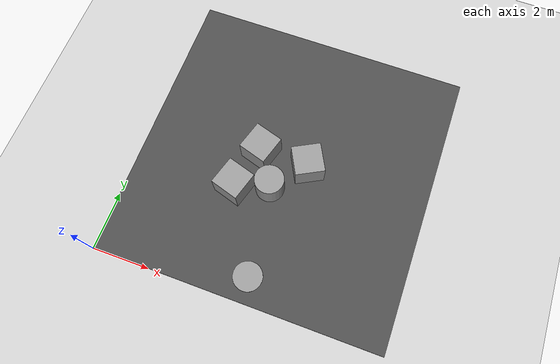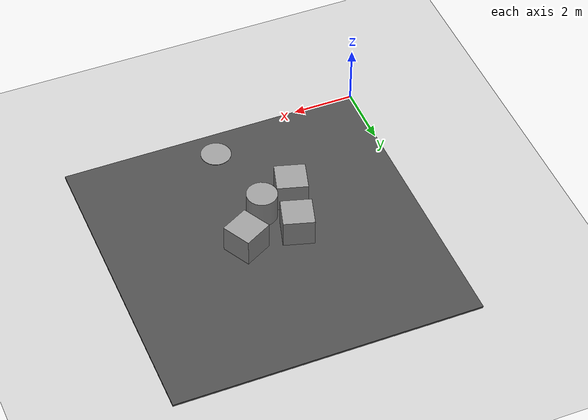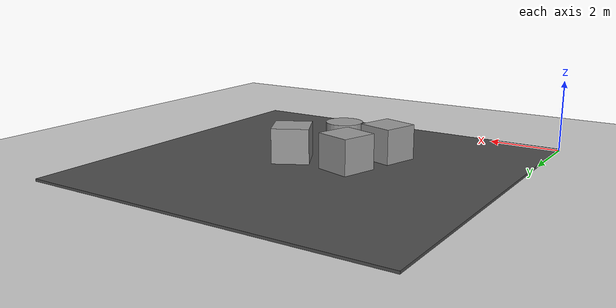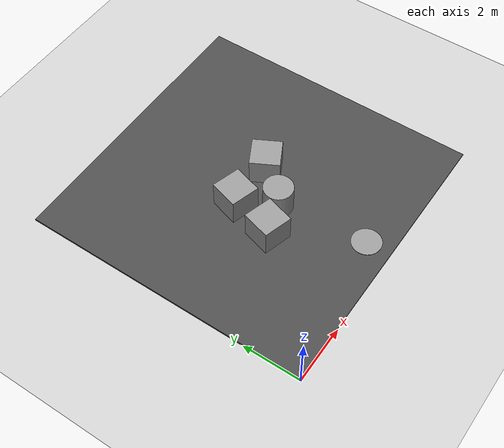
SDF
<sdf version="1.7">
 <world name="default">
  <light name="sun" type="directional">
   <pose>0 0 10 0 -0 0</pose>
   <diffuse>0.8 0.8 0.8 1</diffuse>
   <specular>0.2 0.2 0.2 1</specular>
   <attenuation>
    <range>1000</range>
    <constant>0.9</constant>
    <linear>0.01</linear>
    <quadratic>0.001</quadratic>
   </attenuation>
   <direction>-0.5 0.1 -0.9</direction>
   <spot><inner_angle>0</inner_angle><outer_angle>0</outer_angle><falloff>0</falloff></spot>
  </light>
  <model name="ground_plane">
   <static>1</static>
   <link name="link">
    <collision name="collision">
     <geometry><plane><normal>0 0 1</normal><size>100 100</size></plane></geometry>
     <surface>
      <contact><collide_bitmask>65535</collide_bitmask></contact>
      <friction><ode><mu>100</mu><mu2>50</mu2></ode></friction>
     </surface>
    </collision>
    <visual name="visual">
     <cast_shadows>0</cast_shadows>
     <geometry><plane><normal>0 0 1</normal><size>100 100</size></plane></geometry>
     <material>
      <script><uri>file://media/materials/scripts/gazebo.material</uri><name>Gazebo/Grey</name></script>
     </material>
    </visual>
   </link>
  </model>
  <gravity>0 0 -9.8</gravity>
  <magnetic_field>6e-06 2.3e-05 -4.2e-05</magnetic_field>
  <atmosphere type="adiabatic"/>
  <physics type="ode">
   <max_step_size>0.001</max_step_size>
   <real_time_factor>1</real_time_factor>
   <real_time_update_rate>1000</real_time_update_rate>
  </physics>
  <scene><ambient>0.4 0.4 0.4 1</ambient><background>0.7 0.7 0.7 1</background><shadows>1</shadows></scene>
  <model name="asphalt_plane">
   <static>1</static>
   <link name="link">
    <collision name="collision"><geometry><box><size>10.0033 9.97431 0.1</size></box></geometry></collision>
    <visual name="visual">
     <cast_shadows>0</cast_shadows>
     <geometry><box><size>10.0033 9.97431 0.1</size></box></geometry>
     <material>
      <script>
       <uri>model://asphalt_plane/materials/scripts</uri>
       <uri>model://asphalt_plane/materials/textures</uri>
       <name>vrc/asphalt</name>
      </script>
     </material>
    </visual>
    <velocity_decay><linear>0</linear><angular>0</angular></velocity_decay>
   </link>
   <pose>5 5 0 0 -0 0</pose>
  </model>
  <spherical_coordinates>
   <surface_model>EARTH_WGS84</surface_model>
   <latitude_deg>0</latitude_deg>
   <longitude_deg>0</longitude_deg>
   <elevation>0</elevation>
   <heading_deg>0</heading_deg>
  </spherical_coordinates>
  <model name="unit_box">
   <pose>3.63684 3.57499 0.500002 -4e-06 -0 -0.286108</pose>
   <link name="link">
    <inertial>
     <mass>1</mass>
     <inertia>
      <ixx>0.166667</ixx>
      <ixy>0</ixy>
      <ixz>0</ixz>
      <iyy>0.166667</iyy>
      <iyz>0</iyz>
      <izz>0.166667</izz>
     </inertia>
    </inertial>
    <collision name="collision"><geometry><box><size>1 1 1</size></box></geometry></collision>
    <visual name="visual">
     <geometry><box><size>1 1 1</size></box></geometry>
     <material>
      <script><name>Gazebo/Grey</name><uri>file://media/materials/scripts/gazebo.material</uri></script>
     </material>
    </visual>
   </link>
  </model>
  <model name="unit_box_0">
   <pose>4.03823 5.06161 0.5 0 0 -0.288939</pose>
   <link name="link">
    <inertial>
     <mass>1</mass>
     <inertia>
      <ixx>0.166667</ixx>
      <ixy>0</ixy>
      <ixz>0</ixz>
      <iyy>0.166667</iyy>
      <iyz>0</iyz>
      <izz>0.166667</izz>
     </inertia>
    </inertial>
    <collision name="collision"><geometry><box><size>1 1 1</size></box></geometry></collision>
    <visual name="visual">
     <geometry><box><size>1 1 1</size></box></geometry>
     <material>
      <script><name>Gazebo/Grey</name><uri>file://media/materials/scripts/gazebo.material</uri></script>
     </material>
    </visual>
   </link>
  </model>
  <model name="unit_cylinder">
   <pose>4.77214 3.93832 0.499992 -3e-06 3e-06 0</pose>
   <link name="link">
    <inertial>
     <mass>1</mass>
     <inertia><ixx>0.145833</ixx><ixy>0</ixy><ixz>0</ixz><iyy>0.145833</iyy><iyz>0</iyz><izz>0.125</izz></inertia>
    </inertial>
    <collision name="collision">
     <geometry><cylinder><radius>0.5</radius><length>1</length></cylinder></geometry>
    </collision>
    <visual name="visual">
     <geometry><cylinder><radius>0.5</radius><length>1</length></cylinder></geometry>
     <material>
      <script><name>Gazebo/Grey</name><uri>file://media/materials/scripts/gazebo.material</uri></script>
     </material>
    </visual>
   </link>
  </model>
  <model name="unit_box_1">
   <pose>5.7342 5.04886 0.5 0 -0 0.489636</pose>
   <link name="link">
    <inertial>
     <mass>1</mass>
     <inertia>
      <ixx>0.166667</ixx>
      <ixy>0</ixy>
      <ixz>0</ixz>
      <iyy>0.166667</iyy>
      <iyz>0</iyz>
      <izz>0.166667</izz>
     </inertia>
    </inertial>
    <collision name="collision"><geometry><box><size>1 1 1</size></box></geometry></collision>
    <visual name="visual">
     <geometry><box><size>1 1 1</size></box></geometry>
     <material>
      <script><name>Gazebo/Grey</name><uri>file://media/materials/scripts/gazebo.material</uri></script>
     </material>
    </visual>
   </link>
  </model>
  <model name="unit_cylinder_0">
   <link name="link">
    <inertial>
     <mass>1</mass>
     <inertia><ixx>0.145833</ixx><ixy>0</ixy><ixz>0</ixz><iyy>0.145833</iyy><iyz>0</iyz><izz>0.125</izz></inertia>
    </inertial>
    <visual name="visual">
     <geometry><cylinder><radius>0.5</radius><length>0.0238306</length></cylinder></geometry>
     <material>
      <script><name>Gazebo/Grey</name><uri>file://media/materials/scripts/gazebo.material</uri></script>
      <shader type="pixel"/>
     </material>
    </visual>
    <collision name="collision">
     <geometry><cylinder><radius>0.5</radius><length>0.023831</length></cylinder></geometry>
     <surface>
      <friction>
       <ode><mu>1</mu><mu2>1</mu2><fdir1>0 0 0</fdir1><slip1>0</slip1><slip2>0</slip2></ode>
       <torsional>
        <coefficient>1</coefficient>
        <patch_radius>0</patch_radius>
        <surface_radius>0</surface_radius>
        <use_patch_radius>1</use_patch_radius>
        <ode><slip>0</slip></ode>
       </torsional>
      </friction>
      <bounce><restitution_coefficient>0</restitution_coefficient><threshold>1e+06</threshold></bounce>
      <contact>
       <collide_without_contact>0</collide_without_contact>
       <collide_without_contact_bitmask>1</collide_without_contact_bitmask>
       <collide_bitmask>1</collide_bitmask>
       <ode>
        <soft_cfm>0</soft_cfm>
        <soft_erp>0.2</soft_erp>
        <kp>1e+13</kp>
        <kd>1</kd>
        <max_vel>0.01</max_vel>
        <min_depth>0</min_depth>
       </ode>
       <bullet>
        <split_impulse>1</split_impulse>
        <split_impulse_penetration_threshold>-0.01</split_impulse_penetration_threshold>
        <soft_cfm>0</soft_cfm>
        <soft_erp>0.2</soft_erp>
        <kp>1e+13</kp>
        <kd>1</kd>
       </bullet>
      </contact>
     </surface>
    </collision>
   </link>
   <static>1</static>
   <pose>5.14577 0.876725 0.0499997 3e-06 4e-06 -0</pose>
  </model>
 </world>
</sdf>
